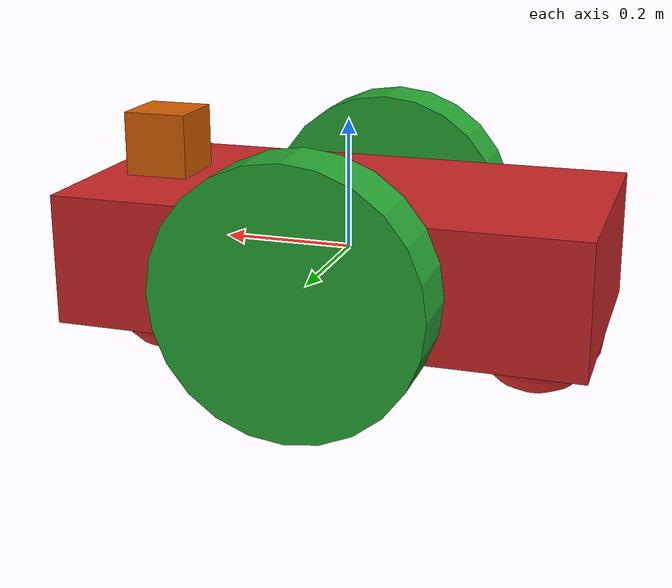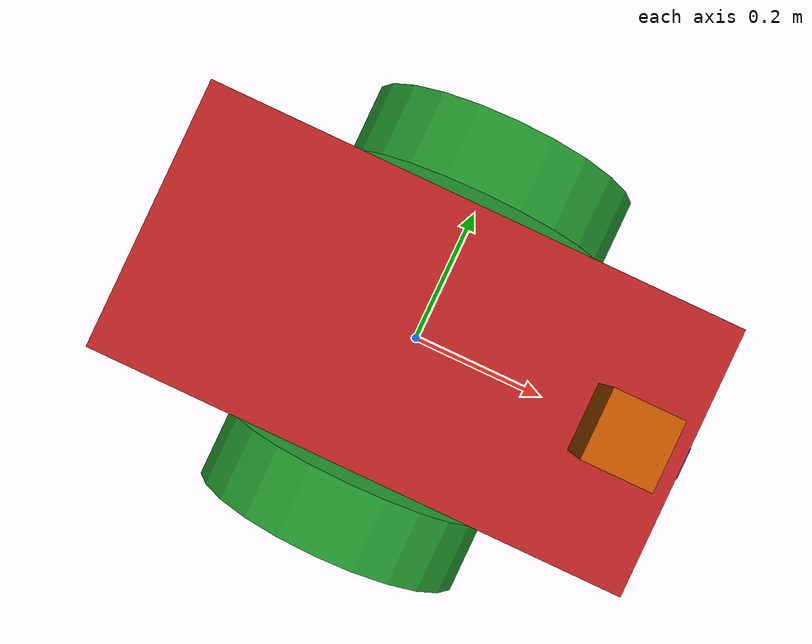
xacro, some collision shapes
<robot name="my_robot" xmlns:xacro="http://www.ros.org/wiki/xacro">
<xacro:include filename="$(find my_robot)/urdf/my_robot.gazebo" />
  <link name="robot_footprint"></link>

  <joint name="robot_footprint_joint" type="fixed">
    <origin xyz="0 0 0" rpy="0 0 0" />
    <parent link="robot_footprint"/>
    <child link="chassis" />
  </joint>

  <link name='chassis'>
    <pose>0 0 0.1 0 0 0</pose>

    <inertial>
      <mass value="15.0"/>
      <origin xyz="0.0 0 0" rpy=" 0 0 0"/>
      <inertia
          ixx="0.1" ixy="0" ixz="0"
          iyy="0.1" iyz="0"
          izz="0.1"
      />
    </inertial>

    <collision name='collision'>
      <origin xyz="0 0 0" rpy=" 0 0 0"/>
      <geometry>
        <box size=".8 .4 .2"/>
      </geometry>
    </collision>

    <visual name='chassis_visual'>
      <origin xyz="0 0 0" rpy=" 0 0 0"/>
      <geometry>
        <box size=".8 .4 .2"/>
      </geometry>
    </visual>

    <collision name='back_caster_collision'>
      <origin xyz="-0.3 0 -0.1" rpy=" 0 0 0"/>
      <geometry>
        <sphere radius="0.1"/>
      </geometry>
    </collision>

    <visual name='back_caster_visual'>
      <origin xyz="-0.3 0 -0.1" rpy=" 0 0 0"/>
      <geometry>
        <sphere radius="0.1"/>
      </geometry>
    </visual>

    <collision name='front_caster_collision'>
      <origin xyz="0.3 0 -0.1" rpy=" 0 0 0"/>
      <geometry>
        <sphere radius="0.1"/>
      </geometry>
    </collision>

    <visual name='front_caster_visual'>
      <origin xyz="0.3 0 -0.1" rpy=" 0 0 0"/>
      <geometry>
        <sphere radius="0.1"/>
      </geometry>
    </visual>

  </link>

<link name='left_wheel'>
    <pose>0 0 0 0 0 0</pose>

    <inertial>
      <mass value="5.0"/>
      <origin xyz="0.0 0 0" rpy=" 0 1.5707 1.5707"/>
      <inertia
          ixx="0.1" ixy="0" ixz="0"
          iyy="0.1" iyz="0"
          izz="0.1"
      />
    </inertial>

    <collision name='collision'>
      <origin xyz="0 0 0" rpy=" 0 1.5707 1.5707"/>
      <geometry>
        <cylinder radius="0.2" length="0.1"/>
      </geometry>
    </collision>

    <visual name='left_wheel_visual'>
      <origin xyz="0 0 0" rpy=" 0 1.5707 1.5707"/>
      <geometry>
        <cylinder radius="0.2" length="0.1"/>
      </geometry>
    </visual>
  </link>

  <link name='right_wheel'>
    <pose>0 0 0 0 0 0</pose>

    <inertial>
      <mass value="5.0"/>
      <origin xyz="0.0 0 0" rpy=" 0 1.5707 1.5707"/>
      <inertia
          ixx="0.1" ixy="0" ixz="0"
          iyy="0.1" iyz="0"
          izz="0.1"
      />
    </inertial>

    <collision name='collision'>
      <origin xyz="0 0 0" rpy=" 0 1.5707 1.5707"/>
      <geometry>
        <cylinder radius="0.2" length="0.1"/>
      </geometry>
    </collision>

    <visual name='right_wheel_visual'>
      <origin xyz="0 0 0" rpy=" 0 1.5707 1.5707"/>
      <geometry>
        <cylinder radius="0.2" length="0.1"/>
      </geometry>
    </visual>
  </link>

  <joint type="continuous" name="left_wheel_hinge">
    <origin xyz="0 0.25 0" rpy="0 0 0"/>
    <child link="left_wheel"/>
    <parent link="chassis"/>
    <axis xyz="0 1 0" rpy="0 0 0"/>
    <limit effort="10000" velocity="1000"/>
    <dynamics damping="1.0" friction="1.0"/>
  </joint>

  <joint type="continuous" name="right_wheel_hinge">
    <origin xyz="0 -0.25 0" rpy="0 0 0"/>
    <child link="right_wheel"/>
    <parent link="chassis"/>
    <axis xyz="0 1 0" rpy="0 0 0"/>
    <limit effort="10000" velocity="1000"/>
    <dynamics damping="1.0" friction="1.0"/>
  </joint>

 <link name='camera'>
    <pose>0 0 0 0 0 0</pose>

    <inertial>
      <mass value="0.1"/>
      <origin xyz="0.0 0 0" rpy="0.0 0 0"/>
      <inertia
          ixx="1e-6" ixy="0" ixz="0"
          iyy="1e-6" iyz="0"
          izz="1e-6"
      />
    </inertial>

    <collision name='collision'>
      <origin xyz="0 0 0" rpy=" 0 0 0"/>
      <geometry>
        <box size="0.05 0.05 0.05"/>
      </geometry>
    </collision>

    <visual name='camera_visual'>
      <origin xyz="0 0 0" rpy="0 0 0"/>
      <geometry>
        <box size="0.05 0.05 0.05"/>
      </geometry>
    </visual>
  </link>

  <joint type="fixed" name="camera_joint">
    <origin xyz="0.4 0 0" rpy="0 0 0"/>
    <child link="camera"/>
    <parent link="chassis"/>
    <axis xyz="0 1 0" rpy="0 0 0"/>
    <limit effort="10000" velocity="1000"/>
    <dynamics damping="1.0" friction="1.0"/>
  </joint>

  <!--Link Hokuyo-->
  <link name="hokuyo">
    <inertial>
      <origin xyz="0 0 0" rpy="0 0 0"/>
      <mass value="1e-5"/>
      <inertia ixx="1e-6" ixy="0" ixz="0" iyy="1e-6" iyz="0" izz="1e-6"/>
    </inertial>

    <visual>
      <origin xyz="0 0 0" rpy="0 0 0"/>
      <geometry>
        <mesh filename="package://my_robot/meshes/hokuyo.dae"/>
      </geometry>
    </visual>

    <collision>
      <origin xyz="0 0 0" rpy="0 0 0"/>
      <geometry>
        <box size="0.1 0.1 0.1"/>
      </geometry>
    </collision>
  </link>

  <!--Joint Hokuyo-->
  <joint type="fixed" name="hokuyo_joint">
    <origin xyz="0.30 0 0.15" rpy="0 0 0"/>
    <child link="hokuyo"/>
    <parent link="chassis"/>
    <axis xyz="0 1 0" rpy="0 0 0"/>
    <limit effort="10000" velocity="1000"/>
    <dynamics damping="1.0" friction="1.0"/>
  </joint>

  <gazebo reference="chassis">
    <material>Gazebo/Red</material>
  </gazebo>

  <gazebo reference="left_wheel">
    <material>Gazebo/Green</material>
  </gazebo>

  <gazebo reference="right_wheel">
    <material>Gazebo/Green</material>
  </gazebo>

  <gazebo reference="camera">
    <material>Gazebo/Blue</material>
  </gazebo>
</robot>
